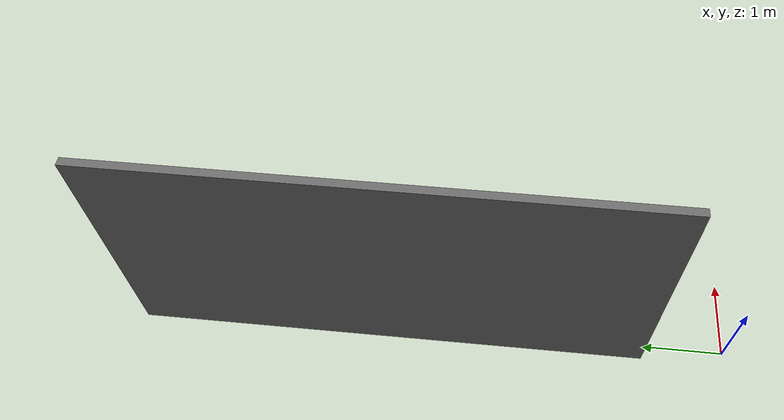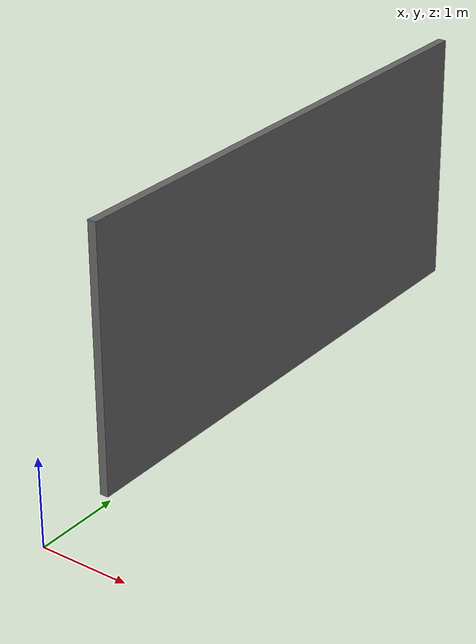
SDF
<?xml version="1.0" ?>
<!-- tmp sdf file generated from LISDF -->
<sdf version="1.9">
  <world name="tmp_world">

<model name="wall">
  <static>True</static>
  <pose>-0.1120000034570694 4.211999893188477 1.5089999437332153 0.0 -0.0 0.0</pose>
  <link name="box">

    <inertial>
      <mass>0</mass>
      <pose>0.0 0.0 0.0 0.0 -0.0 0.0</pose>
      <inertia>
        <ixx>0</ixx>
        <ixy>0</ixy>
        <ixz>0</ixz>
        <iyy>0</iyy>
        <iyz>0</iyz>
        <izz>0</izz>
      </inertia>
    </inertial>
    <collision name="box_collision">>
      <pose>0.0 0.0 0.0 0.0 -0.0 0.0</pose>
      <geometry>
        <box>
          <size>0.10000000149011612 6.372000217437744 3.0179998874664307</size>
        </box>
      </geometry>

    </collision>
    <visual name="box_visual">
      <pose>0.0 0.0 0.0 0.0 -0.0 0.0</pose>
      <geometry>
        <box>
          <size>0.10000000149011612 6.372000217437744 3.0179998874664307</size>
        </box>
      </geometry>
      <material>
        <ambient>1.0 1.0 1.0 1.0</ambient>
        <diffuse>0.4000000059604645 0.4000000059604645 0.4000000059604645 1.0</diffuse>
        <specular>0.0 0.0 0.0 1.0</specular>
        <emissive>0.0 0.0 0.0 1.0</emissive>
      </material>
      <cast_shadows>True</cast_shadows>
    </visual>
    <self_collide>True</self_collide>
  </link>

</model>

  </world>
</sdf>
